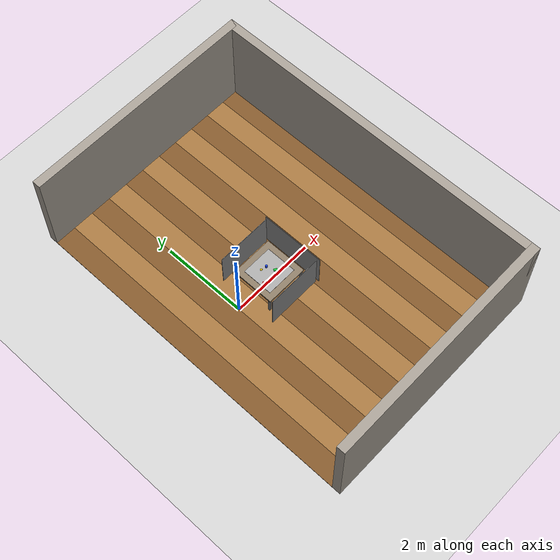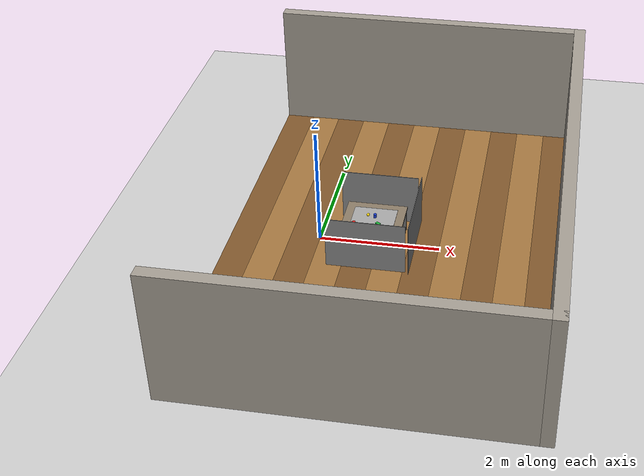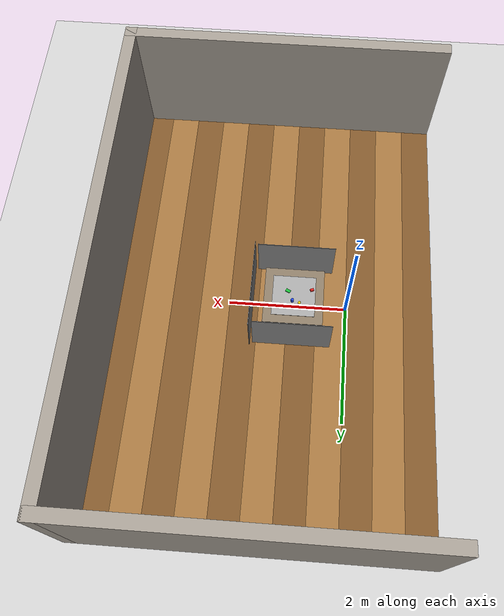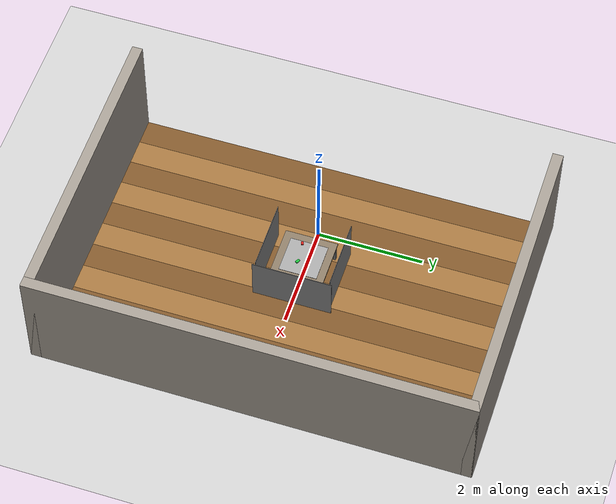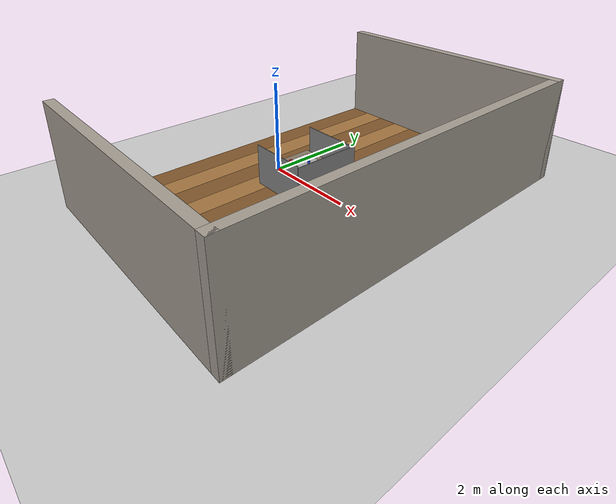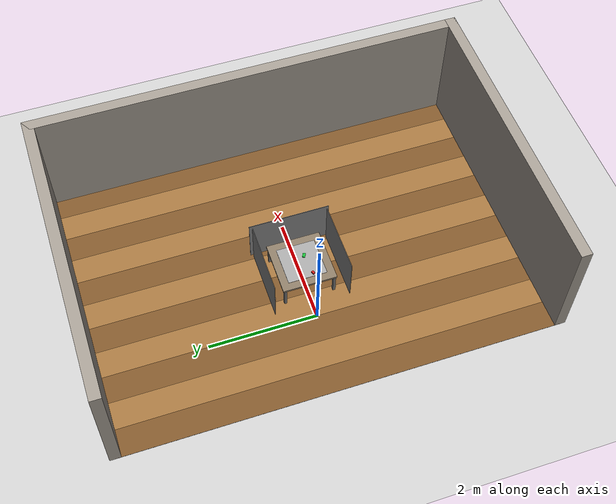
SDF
<?xml version="1.0" ?>
<sdf version="1.6">
  <world name="emeet_arm_workspace">

    <!-- ── 物理引擎 ──────────────────────────────────────────────────────────── -->
    <physics type="ode">
      <real_time_update_rate>1000</real_time_update_rate>
      <max_step_size>0.001</max_step_size>
      <real_time_factor>1.0</real_time_factor>
      <ode>
        <solver>
          <type>quick</type>
          <iters>50</iters>
          <sor>1.3</sor>
        </solver>
        <constraints>
          <cfm>0</cfm>
          <erp>0.2</erp>
          <contact_max_correcting_vel>100</contact_max_correcting_vel>
          <contact_surface_layer>0.001</contact_surface_layer>
        </constraints>
      </ode>
    </physics>

    <!-- ── 初始视角：机械臂后侧方 ───────────────────────────────────────────── -->
    <gui fullscreen="0">
      <camera name="user_camera">
        <pose>-1.8 -2.2 1.6 0 0.38 0.62</pose>
        <view_controller>orbit</view_controller>
      </camera>
    </gui>

    <!-- ── 场景 ──────────────────────────────────────────────────────────────── -->
    <scene>
      <shadows>false</shadows>
      <grid>false</grid>
      <ambient>0.50 0.50 0.50 1</ambient>
      <background>0.20 0.20 0.20 1</background>
    </scene>

    <!-- ── 地面（物理碰撞用，不可见）──────────────────────────────────────── -->
    <include>
      <uri>model://ground_plane</uri>
    </include>

    <!-- 木地板：11 块板，x:-1.50~3.75，y 方向 8.0m（±4.0），匹配墙体围合区域 -->
    <model name="wood_floor">
      <static>true</static>
      <link name="p0"><pose>-1.25 0 0.004 0 0 0</pose>
        <visual name="v"><geometry><box><size>0.50 8.0 0.008</size></box></geometry>
          <material><ambient>0.48 0.32 0.16 1</ambient><diffuse>0.50 0.34 0.17 1</diffuse><specular>0.15 0.10 0.06 25</specular></material>
        </visual>
      </link>
      <link name="p1"><pose>-0.75 0 0.004 0 0 0</pose>
        <visual name="v"><geometry><box><size>0.50 8.0 0.008</size></box></geometry>
          <material><ambient>0.62 0.44 0.24 1</ambient><diffuse>0.64 0.46 0.25 1</diffuse><specular>0.18 0.12 0.07 25</specular></material>
        </visual>
      </link>
      <link name="p2"><pose>-0.25 0 0.004 0 0 0</pose>
        <visual name="v"><geometry><box><size>0.50 8.0 0.008</size></box></geometry>
          <material><ambient>0.48 0.32 0.16 1</ambient><diffuse>0.50 0.34 0.17 1</diffuse><specular>0.15 0.10 0.06 25</specular></material>
        </visual>
      </link>
      <link name="p3"><pose>0.25 0 0.004 0 0 0</pose>
        <visual name="v"><geometry><box><size>0.50 8.0 0.008</size></box></geometry>
          <material><ambient>0.62 0.44 0.24 1</ambient><diffuse>0.64 0.46 0.25 1</diffuse><specular>0.18 0.12 0.07 25</specular></material>
        </visual>
      </link>
      <link name="p4"><pose>0.75 0 0.004 0 0 0</pose>
        <visual name="v"><geometry><box><size>0.50 8.0 0.008</size></box></geometry>
          <material><ambient>0.48 0.32 0.16 1</ambient><diffuse>0.50 0.34 0.17 1</diffuse><specular>0.15 0.10 0.06 25</specular></material>
        </visual>
      </link>
      <link name="p5"><pose>1.25 0 0.004 0 0 0</pose>
        <visual name="v"><geometry><box><size>0.50 8.0 0.008</size></box></geometry>
          <material><ambient>0.62 0.44 0.24 1</ambient><diffuse>0.64 0.46 0.25 1</diffuse><specular>0.18 0.12 0.07 25</specular></material>
        </visual>
      </link>
      <link name="p6"><pose>1.75 0 0.004 0 0 0</pose>
        <visual name="v"><geometry><box><size>0.50 8.0 0.008</size></box></geometry>
          <material><ambient>0.48 0.32 0.16 1</ambient><diffuse>0.50 0.34 0.17 1</diffuse><specular>0.15 0.10 0.06 25</specular></material>
        </visual>
      </link>
      <link name="p7"><pose>2.25 0 0.004 0 0 0</pose>
        <visual name="v"><geometry><box><size>0.50 8.0 0.008</size></box></geometry>
          <material><ambient>0.62 0.44 0.24 1</ambient><diffuse>0.64 0.46 0.25 1</diffuse><specular>0.18 0.12 0.07 25</specular></material>
        </visual>
      </link>
      <link name="p8"><pose>2.75 0 0.004 0 0 0</pose>
        <visual name="v"><geometry><box><size>0.50 8.0 0.008</size></box></geometry>
          <material><ambient>0.48 0.32 0.16 1</ambient><diffuse>0.50 0.34 0.17 1</diffuse><specular>0.15 0.10 0.06 25</specular></material>
        </visual>
      </link>
      <link name="p9"><pose>3.25 0 0.004 0 0 0</pose>
        <visual name="v"><geometry><box><size>0.50 8.0 0.008</size></box></geometry>
          <material><ambient>0.62 0.44 0.24 1</ambient><diffuse>0.64 0.46 0.25 1</diffuse><specular>0.18 0.12 0.07 25</specular></material>
        </visual>
      </link>
      <link name="p10"><pose>3.75 0 0.004 0 0 0</pose>
        <visual name="v"><geometry><box><size>0.50 8.0 0.008</size></box></geometry>
          <material><ambient>0.48 0.32 0.16 1</ambient><diffuse>0.50 0.34 0.17 1</diffuse><specular>0.15 0.10 0.06 25</specular></material>
        </visual>
      </link>
    </model>

    <!-- ── 主光源 ─────────────────────────────────────────────────────────────── -->
    <light type="directional" name="overhead_light">
      <pose>0.75 0 3.0 0 0.1 0</pose>
      <diffuse>0.92 0.92 0.88 1</diffuse>
      <specular>0.3 0.3 0.3 1</specular>
      <direction>0 0 -1</direction>
      <cast_shadows>false</cast_shadows>
    </light>

    <light type="point" name="fill_light">
      <pose>-0.3 0.5 1.2 0 0 0</pose>
      <diffuse>0.55 0.55 0.60 1</diffuse>
      <specular>0.1 0.1 0.1 1</specular>
      <attenuation>
        <range>5</range>
        <constant>0.3</constant>
        <linear>0.1</linear>
        <quadratic>0.01</quadratic>
      </attenuation>
      <cast_shadows>false</cast_shadows>
    </light>

    <!--
      空间布局：
        机械臂 base (0,0,0)
        桌子近端 x=0.50，中心 x=0.90，深 0.80m，宽 0.80m，桌面 z=0.50
        灰布距桌边 20cm，高 0.90m
    -->

    <!-- ── 工作台 ──────────────────────────────────────────────────────────── -->
    <!-- 桌子 1.00×1.00m，台面顶部 z=0.50，桌面改为深色亚光木色 -->
    <model name="workbench">
      <static>true</static>
      <link name="surface">
        <pose>0.90 0 0.43 0 0 0</pose>
        <collision name="col">
          <geometry><box><size>1.00 1.00 0.04</size></box></geometry>
        </collision>
        <visual name="vis">
          <geometry><box><size>1.00 1.00 0.04</size></box></geometry>
          <material>
            <ambient>0.52 0.46 0.38 1</ambient>
            <diffuse>0.54 0.48 0.40 1</diffuse>
            <specular>0.06 0.05 0.04 8</specular>
          </material>
        </visual>
      </link>
      <link name="leg_fl"><pose>0.435 -0.455 0.205 0 0 0</pose>
        <collision name="col"><geometry><box><size>0.05 0.05 0.41</size></box></geometry></collision>
        <visual name="vis"><geometry><box><size>0.05 0.05 0.41</size></box></geometry>
          <material><ambient>0.45 0.45 0.45 1</ambient><diffuse>0.45 0.45 0.45 1</diffuse></material>
        </visual>
      </link>
      <link name="leg_fr"><pose>0.435  0.455 0.205 0 0 0</pose>
        <collision name="col"><geometry><box><size>0.05 0.05 0.41</size></box></geometry></collision>
        <visual name="vis"><geometry><box><size>0.05 0.05 0.41</size></box></geometry>
          <material><ambient>0.45 0.45 0.45 1</ambient><diffuse>0.45 0.45 0.45 1</diffuse></material>
        </visual>
      </link>
      <link name="leg_bl"><pose>1.365 -0.455 0.205 0 0 0</pose>
        <collision name="col"><geometry><box><size>0.05 0.05 0.41</size></box></geometry></collision>
        <visual name="vis"><geometry><box><size>0.05 0.05 0.41</size></box></geometry>
          <material><ambient>0.45 0.45 0.45 1</ambient><diffuse>0.45 0.45 0.45 1</diffuse></material>
        </visual>
      </link>
      <link name="leg_br"><pose>1.365  0.455 0.205 0 0 0</pose>
        <collision name="col"><geometry><box><size>0.05 0.05 0.41</size></box></geometry></collision>
        <visual name="vis"><geometry><box><size>0.05 0.05 0.41</size></box></geometry>
          <material><ambient>0.45 0.45 0.45 1</ambient><diffuse>0.45 0.45 0.45 1</diffuse></material>
        </visual>
      </link>
    </model>

    <!-- ── 拍摄底板（浅灰，比之前暗一些避免刺眼）────────────────────────── -->
    <model name="inspection_plate">
      <static>true</static>
      <pose>0.90 0 0.453 0 0 0</pose>
      <link name="link">
        <collision name="col">
          <geometry><box><size>0.72 0.72 0.005</size></box></geometry>
        </collision>
        <visual name="vis">
          <geometry><box><size>0.72 0.72 0.005</size></box></geometry>
          <material>
            <ambient>0.65 0.65 0.65 1</ambient>
            <diffuse>0.65 0.65 0.65 1</diffuse>
            <specular>0.03 0.03 0.03 5</specular>
          </material>
        </visual>
      </link>
    </model>

    <!-- ── 三侧灰布（距桌边 20cm，与桌子同步扩大）────────────────────────── -->
    <!-- 桌子远端 x=1.40，布在 x=1.60；桌子左右 y=±0.50，布在 y=±0.70 -->
    <model name="cloth_back">
      <static>true</static>
      <pose>1.60 0 0.45 0 0 0</pose>
      <link name="link">
        <collision name="col">
          <geometry><box><size>0.01 1.50 0.90</size></box></geometry>
        </collision>
        <visual name="vis">
          <geometry><box><size>0.01 1.50 0.90</size></box></geometry>
          <material>
            <ambient>0.52 0.52 0.52 1</ambient>
            <diffuse>0.52 0.52 0.52 1</diffuse>
            <specular>0.02 0.02 0.02 2</specular>
          </material>
        </visual>
      </link>
    </model>

    <model name="cloth_left">
      <static>true</static>
      <pose>0.90 -0.70 0.45 0 0 0</pose>
      <link name="link">
        <collision name="col">
          <geometry><box><size>1.30 0.01 0.90</size></box></geometry>
        </collision>
        <visual name="vis">
          <geometry><box><size>1.30 0.01 0.90</size></box></geometry>
          <material>
            <ambient>0.52 0.52 0.52 1</ambient>
            <diffuse>0.52 0.52 0.52 1</diffuse>
            <specular>0.02 0.02 0.02 2</specular>
          </material>
        </visual>
      </link>
    </model>

    <model name="cloth_right">
      <static>true</static>
      <pose>0.90 0.70 0.45 0 0 0</pose>
      <link name="link">
        <collision name="col">
          <geometry><box><size>1.30 0.01 0.90</size></box></geometry>
        </collision>
        <visual name="vis">
          <geometry><box><size>1.30 0.01 0.90</size></box></geometry>
          <material>
            <ambient>0.52 0.52 0.52 1</ambient>
            <diffuse>0.52 0.52 0.52 1</diffuse>
            <specular>0.02 0.02 0.02 2</specular>
          </material>
        </visual>
      </link>
    </model>

    <!-- ── 三面墙（素色，前侧开放）──────────────────────────────────────────── -->
    <!-- 后墙 x=4.00，左右墙 y=±4.00，形成宽敞的 U 形空间 -->
    <model name="wall_back">
      <static>true</static>
      <link name="base"><pose>4.00 0 1.10 0 0 0</pose>
        <collision name="col"><geometry><box><size>0.20 8.20 2.20</size></box></geometry></collision>
        <visual name="vis"><geometry><box><size>0.20 8.20 2.20</size></box></geometry>
          <material><ambient>0.64 0.61 0.57 1</ambient><diffuse>0.64 0.61 0.57 1</diffuse><specular>0.08 0.08 0.07 10</specular></material></visual>
      </link>
    </model>

    <model name="wall_left">
      <static>true</static>
      <link name="base"><pose>1.30 -4.00 1.10 0 0 0</pose>
        <collision name="col"><geometry><box><size>5.60 0.20 2.20</size></box></geometry></collision>
        <visual name="vis"><geometry><box><size>5.60 0.20 2.20</size></box></geometry>
          <material><ambient>0.64 0.61 0.57 1</ambient><diffuse>0.64 0.61 0.57 1</diffuse><specular>0.08 0.08 0.07 10</specular></material></visual>
      </link>
    </model>

    <model name="wall_right">
      <static>true</static>
      <link name="base"><pose>1.30 4.00 1.10 0 0 0</pose>
        <collision name="col"><geometry><box><size>5.60 0.20 2.20</size></box></geometry></collision>
        <visual name="vis"><geometry><box><size>5.60 0.20 2.20</size></box></geometry>
          <material><ambient>0.64 0.61 0.57 1</ambient><diffuse>0.64 0.61 0.57 1</diffuse><specular>0.08 0.08 0.07 10</specular></material></visual>
      </link>
    </model>

    <!-- ── 被检测物体（台面顶部 z=0.50）──────────────────────────────────── -->
    <model name="obj_box_red">
      <static>false</static>
      <pose>0.60 -0.12 0.47 0 0 0.4</pose>
      <link name="link">
        <inertial><mass>0.1</mass>
          <inertia><ixx>1e-4</ixx><iyy>1e-4</iyy><izz>1e-4</izz></inertia>
        </inertial>
        <collision name="col"><geometry><box><size>0.06 0.04 0.04</size></box></geometry></collision>
        <visual name="vis">
          <geometry><box><size>0.06 0.04 0.04</size></box></geometry>
          <material>
            <ambient>0.85 0.12 0.10 1</ambient>
            <diffuse>0.85 0.12 0.10 1</diffuse>
            <specular>0.3 0.1 0.1 20</specular>
          </material>
        </visual>
      </link>
    </model>

    <model name="obj_cylinder_blue">
      <static>false</static>
      <pose>0.92 0.10 0.485 0 0 0</pose>
      <link name="link">
        <inertial><mass>0.15</mass>
          <inertia><ixx>1e-4</ixx><iyy>1e-4</iyy><izz>5e-5</izz></inertia>
        </inertial>
        <collision name="col"><geometry><cylinder><radius>0.025</radius><length>0.07</length></cylinder></geometry></collision>
        <visual name="vis">
          <geometry><cylinder><radius>0.025</radius><length>0.07</length></cylinder></geometry>
          <material>
            <ambient>0.10 0.25 0.85 1</ambient>
            <diffuse>0.10 0.25 0.85 1</diffuse>
            <specular>0.4 0.4 0.7 40</specular>
          </material>
        </visual>
      </link>
    </model>

    <model name="obj_box_green">
      <static>false</static>
      <pose>1.00 -0.08 0.4625 0 0 -0.5</pose>
      <link name="link">
        <inertial><mass>0.08</mass>
          <inertia><ixx>5e-5</ixx><iyy>5e-5</iyy><izz>5e-5</izz></inertia>
        </inertial>
        <collision name="col"><geometry><box><size>0.08 0.05 0.025</size></box></geometry></collision>
        <visual name="vis">
          <geometry><box><size>0.08 0.05 0.025</size></box></geometry>
          <material>
            <ambient>0.10 0.72 0.22 1</ambient>
            <diffuse>0.10 0.72 0.22 1</diffuse>
            <specular>0.2 0.4 0.2 15</specular>
          </material>
        </visual>
      </link>
    </model>

    <model name="obj_sphere_yellow">
      <static>false</static>
      <pose>0.80 0.13 0.475 0 0 0</pose>
      <link name="link">
        <inertial><mass>0.05</mass>
          <inertia><ixx>2e-5</ixx><iyy>2e-5</iyy><izz>2e-5</izz></inertia>
        </inertial>
        <collision name="col"><geometry><sphere><radius>0.025</radius></sphere></geometry></collision>
        <visual name="vis">
          <geometry><sphere><radius>0.025</radius></sphere></geometry>
          <material>
            <ambient>0.95 0.82 0.05 1</ambient>
            <diffuse>0.95 0.82 0.05 1</diffuse>
            <specular>0.5 0.5 0.1 50</specular>
          </material>
        </visual>
      </link>
    </model>

  </world>
</sdf>
